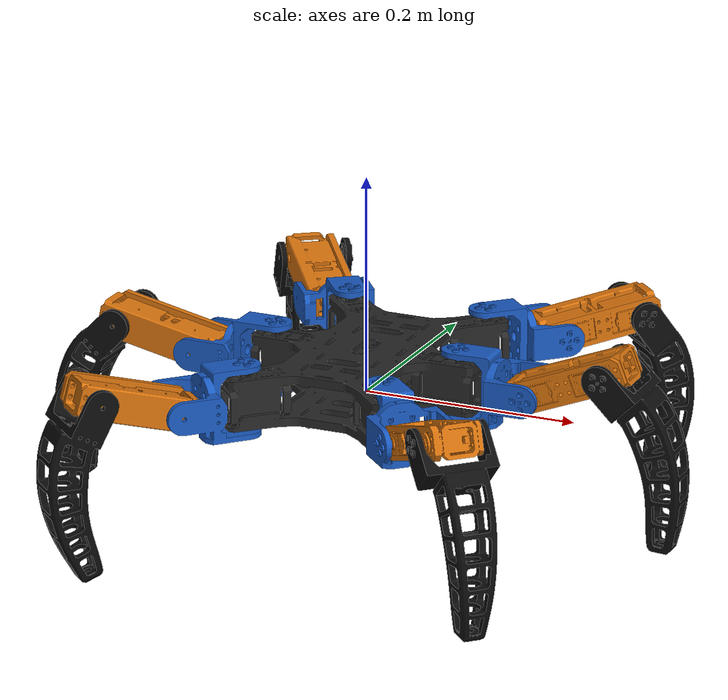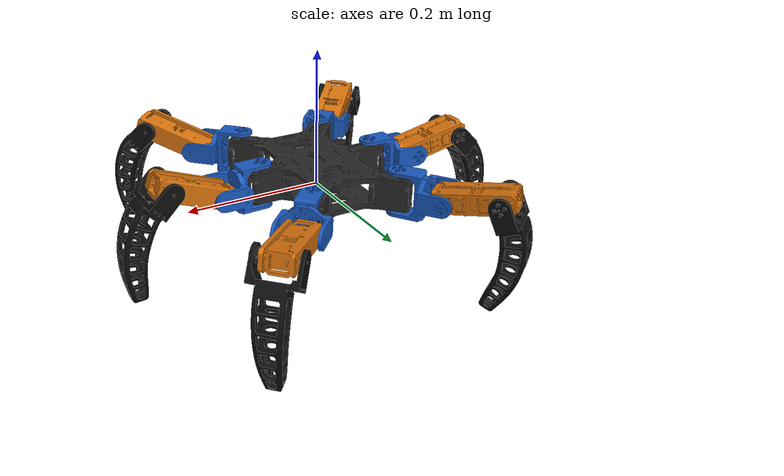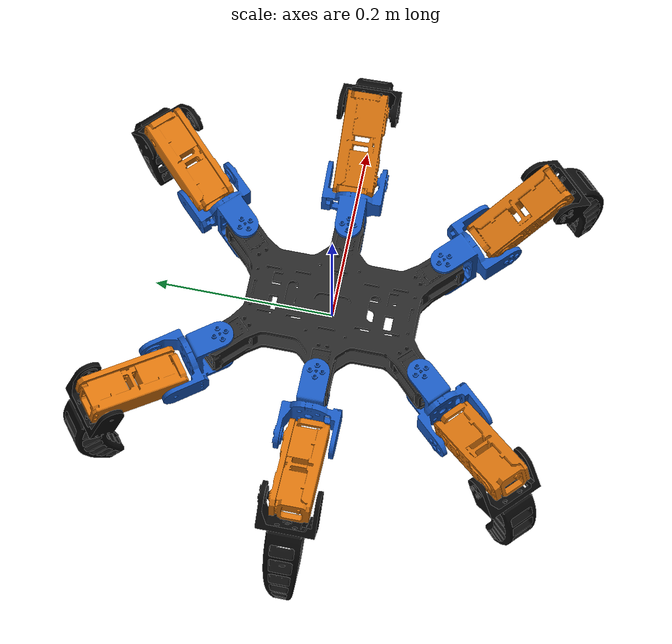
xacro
<?xml version="1.0"?>
<robot xmlns:xacro="http://www.ros.org/wiki/xacro" name="hexapod">

    <xacro:arg name="package_name" default="hexa_description"/>
    <xacro:arg name="robot_name" default="hexapod"/>
    <xacro:arg name="prefix" default=""/>
    <xacro:arg name="config_dir" default="hexa_description"/>

    <xacro:property name="package_name" value="$(arg package_name)"/>
    <xacro:property name="robot_name" value="$(arg robot_name)"/>
    <xacro:property name="prefix" value="$(arg prefix)"/>
    <xacro:property name="config_dir" value="$(arg config_dir)"/>

    <xacro:include filename="materials.xacro"/>

    <material name="base_color">
        <color rgba="0.15 0.15 0.15 1.0"/>
    </material>
    <material name="coxa_color">
        <color rgba="0.10 0.35 0.75 1.0"/>
    </material>
    <material name="femur_color">
        <color rgba="0.85 0.45 0.05 1.0"/>
    </material>
    <material name="tibia_color">
        <color rgba="0.05 0.05 0.05 1.0"/>
    </material>

    <!-- TRANSMISSION MACRO FOR HEXAPOD LEGS        -->
    <xacro:macro name="leg_transmission" params="leg_num prefix">
        <!-- Coxa Joint (Base to Coxa) -->
        <transmission name="${prefix}Joint${leg_num}_1_tran">
            <type>transmission_interface/SimpleTransmission</type>
            <joint name="${prefix}Joint${leg_num}_1">
                <hardwareInterface>hardware_interface/EffortJointInterface</hardwareInterface>
            </joint>
            <actuator name="${prefix}Joint${leg_num}_1_motor">
                <hardwareInterface>hardware_interface/EffortJointInterface</hardwareInterface>
                <mechanicalReduction>1</mechanicalReduction>
            </actuator>
        </transmission>

        <!-- Femur Joint (Coxa to Femur) -->
        <transmission name="${prefix}Joint${leg_num}_2_tran">
            <type>transmission_interface/SimpleTransmission</type>
            <joint name="${prefix}Joint${leg_num}_2">
                <hardwareInterface>hardware_interface/EffortJointInterface</hardwareInterface>
            </joint>
            <actuator name="${prefix}Joint${leg_num}_2_motor">
                <hardwareInterface>hardware_interface/EffortJointInterface</hardwareInterface>
                <mechanicalReduction>1</mechanicalReduction>
            </actuator>
        </transmission>

        <!-- Tibia Joint (Femur to Tibia) -->
        <transmission name="${prefix}Joint${leg_num}_3_tran">
            <type>transmission_interface/SimpleTransmission</type>
            <joint name="${prefix}Joint${leg_num}_3">
                <hardwareInterface>hardware_interface/EffortJointInterface</hardwareInterface>
            </joint>
            <actuator name="${prefix}Joint${leg_num}_3_motor">
                <hardwareInterface>hardware_interface/EffortJointInterface</hardwareInterface>
                <mechanicalReduction>1</mechanicalReduction>
            </actuator>
        </transmission>
    </xacro:macro>

    <!-- Minimal frames -->
    <link name="${prefix}base_footprint">
    </link>

    <link name="${prefix}base_link">
    </link>

    <joint name="${prefix}base_footprint_to_base_link" type="fixed">
        <parent link="${prefix}base_footprint"/>
        <child link="${prefix}base_link"/>
        <origin xyz="0 0 0" rpy="0 0 0"/>
    </joint>

    <!-- Base link and mesh -->
    <link name="${prefix}Base">
        <inertial>
            <origin xyz="3.17137522879131E-06 -3.31180346009379E-06 0.0185997063575468" rpy="0 0 0"/>
            <mass value="0.516033712055295"/>
            <inertia ixx="0.00150227819625822" ixy="5.41358455149925E-09" ixz="-1.21815711093665E-09" iyy="0.000814451751266275" iyz="-4.64061267975536E-19" izz="0.00226054167247862"/>
        </inertial>

        <visual>
            <origin xyz="0 0 0" rpy="0 0 0"/>
            <geometry>
                <mesh filename="package://${package_name}/meshes/Base.STL"/>
            </geometry>
            <material name="base_color"/>
        </visual>

        <collision>
            <origin xyz="0 0 0" rpy="0 0 0"/>
            <geometry>
                <mesh filename="package://${package_name}/meshes/Base.STL"/>
            </geometry>
        </collision>
    </link>

    <gazebo reference="${prefix}Base">
        <sensor name="imu_sensor" type="imu">
            <always_on>1</always_on>
            <update_rate>50</update_rate>
            <visualize>false</visualize>
            <topic>imu</topic>
        </sensor>
    </gazebo>

    <joint name="${prefix}base_link_to_Base" type="fixed">
        <parent link="${prefix}base_link"/>
        <child link="${prefix}Base"/>
        <origin xyz="0 0 0" rpy="0 0 0"/>
    </joint>

    <!-- Template for leg: Coxa/Femur/Tibia groups repeated 6x. Limits set to conservative defaults. -->

    <!-- Coxa 1 -->
    <link name="${prefix}Coxa_1">
        <inertial>
            <origin xyz="0.000577862012579221 -0.0317727763355633 0.0354243258351977" rpy="0 0 0"/>
            <mass value="0.058206986384816"/>
            <inertia ixx="2.09518881532946E-05" ixy="-5.83217116289199E-12" ixz="2.58985476936146E-06" iyy="1.97804446474374E-05" iyz="2.51053441650112E-06" izz="2.06393092896648E-05"/>
        </inertial>
        <visual>
            <geometry>
                <mesh filename="package://${package_name}/meshes/Coxa_1.STL"/>
            </geometry>
            <material name="coxa_color"/>
        </visual>
        <collision>
            <geometry>
                <mesh filename="package://${package_name}/meshes/Coxa_1.STL"/>
            </geometry>
        </collision>
    </link>

    <joint name="${prefix}Joint1_1" type="revolute">
        <parent link="${prefix}Base"/>
        <child link="${prefix}Coxa_1"/>
        <origin xyz="0.067149 0.11215 0.05285" rpy="1.5708 0 2.3578"/>
        <axis xyz="0 -1 0"/>
        <limit lower="-1.5708" upper="1.5708" effort="5" velocity="2"/>
    </joint>

    <link name="${prefix}Femur_1">
        <inertial>
            <origin xyz="0.00548415363509747 -0.0355181600169509 0.0386098257844835" rpy="0 0 0"/>
            <mass value="0.10712888900759"/>
            <inertia ixx="5.18535588310174E-05" ixy="-1.40002219798617E-10" ixz="-5.13657075411247E-06" iyy="4.90722656444643E-05" iyz="2.0073057216516E-11" izz="1.67583851946084E-05"/>
        </inertial>
        <visual>
            <geometry>
                <mesh filename="package://${package_name}/meshes/Femur_1.STL"/>
            </geometry>
            <material name="femur_color"/>
        </visual>
        <collision>
            <geometry>
                <mesh filename="package://${package_name}/meshes/Femur_1.STL"/>
            </geometry>
        </collision>
    </link>

    <joint name="${prefix}Joint1_2" type="revolute">
        <parent link="${prefix}Coxa_1"/>
        <child link="${prefix}Femur_1"/>
        <origin xyz="-0.03075 -0.03075 0.07" rpy="0 0 1.5708"/>
        <axis xyz="0 -1 0"/>
        <limit lower="-1.5708" upper="1.5708" effort="5" velocity="2"/>
    </joint>

    <link name="${prefix}Tibia_1">
        <inertial>
            <origin xyz="-0.0138680196135901 -0.0324549603873032 0.0624085311603042" rpy="0 0 0"/>
            <mass value="0.0754192114511324"/>
            <inertia ixx="8.21130142628132E-05" ixy="1.60749444883877E-08" ixz="3.75894773005154E-05" iyy="0.000101713737698438" iyz="2.38816460912834E-06" izz="4.78951327218008E-05"/>
        </inertial>
        <visual>
            <geometry>
                <mesh filename="package://${package_name}/meshes/Tibia_1.STL"/>
            </geometry>
            <material name="tibia_color"/>
        </visual>
        <collision>
            <origin xyz="-0.0716 -0.0404 0.1549" rpy="0 0 0"/>
            <geometry>
                <sphere radius="0.012"/>
            </geometry>
        </collision>
    </link>

    <joint name="${prefix}Joint1_3" type="revolute">
        <parent link="${prefix}Femur_1"/>
        <child link="${prefix}Tibia_1"/>
        <origin xyz="0.011069 -0.00075 0.077211" rpy="0 -0.95571 0"/>
        <axis xyz="0 -1 0"/>
        <limit lower="-2.0" upper="0.5" effort="5" velocity="2"/>
    </joint>

    <!-- Coxa 2 -->
    <link name="${prefix}Coxa_2">
        <inertial>
            <origin xyz="0.000577862012579344 -0.0317727763355634 0.0354243258351973" rpy="0 0 0"/>
            <mass value="0.058206986384815"/>
            <inertia ixx="2.09518881532943E-05" ixy="-5.83217106619788E-12" ixz="2.58985476936139E-06" iyy="1.97804446474369E-05" iyz="2.51053441650115E-06" izz="2.06393092896644E-05"/>
        </inertial>
        <visual>
            <geometry>
                <mesh filename="package://${package_name}/meshes/Coxa_2.STL"/>
            </geometry>
            <material name="coxa_color"/>
        </visual>
        <collision>
            <geometry>
                <mesh filename="package://${package_name}/meshes/Coxa_2.STL"/>
            </geometry>
        </collision>
    </link>

    <joint name="${prefix}Joint2_1" type="revolute">
        <parent link="${prefix}Base"/>
        <child link="${prefix}Coxa_2"/>
        <origin xyz="0.08925 0 0.05285" rpy="1.5708 0 1.6011"/>
        <axis xyz="0 -1 0"/>
        <limit lower="-1.5708" upper="1.5708" effort="5" velocity="2"/>
    </joint>

    <link name="${prefix}Femur_2">
        <inertial>
            <origin xyz="0.0142167130076838 -0.0347681597363993 0.0363193553535422" rpy="0 0 0"/>
            <mass value="0.107128867042949"/>
            <inertia ixx="4.77633033042784E-05" ixy="1.31761819081924E-10" ixz="-1.23774873097642E-05" iyy="4.90722655777639E-05" iyz="-5.13556803500408E-11" izz="2.08486251280525E-05"/>
        </inertial>
        <visual>
            <geometry>
                <mesh filename="package://${package_name}/meshes/Femur_2.STL"/>
            </geometry>
            <material name="femur_color"/>
        </visual>
        <collision>
            <geometry>
                <mesh filename="package://${package_name}/meshes/Femur_2.STL"/>
            </geometry>
        </collision>
    </link>

    <joint name="${prefix}Joint2_2" type="revolute">
        <parent link="${prefix}Coxa_2"/>
        <child link="${prefix}Femur_2"/>
        <origin xyz="-0.03075 -0.03075 0.07" rpy="0 0 1.5708"/>
        <axis xyz="0 -1 0"/>
        <limit lower="-1.5708" upper="1.5708" effort="5" velocity="2"/>
    </joint>

    <link name="${prefix}Tibia_2">
        <inertial>
            <origin xyz="-0.0138677597249909 -0.0324550056850968 0.0624082245511181" rpy="0 0 0"/>
            <mass value="0.075419455199217"/>
            <inertia ixx="8.21142033520056E-05" ixy="1.59973639579329E-08" ixz="3.75906485740428E-05" iyy="0.000101716150136195" iyz="2.38824872556098E-06" izz="4.78961698795125E-05"/>
        </inertial>
        <visual>
            <geometry>
                <mesh filename="package://${package_name}/meshes/Tibia_2.STL"/>
            </geometry>
            <material name="tibia_color"/>
        </visual>
        <collision>
            <origin xyz="-0.0716 -0.0404 0.1549" rpy="0 0 0"/>
            <geometry>
                <sphere radius="0.012"/>
            </geometry>
        </collision>
    </link>

    <joint name="${prefix}Joint2_3" type="revolute">
        <parent link="${prefix}Femur_2"/>
        <child link="${prefix}Tibia_2"/>
        <origin xyz="0.028338 0.00075 0.07267" rpy="0 -0.79606 0"/>
        <axis xyz="0 -1 0"/>
        <limit lower="-2.0" upper="0.5" effort="5" velocity="2"/>
    </joint>

    <!-- Coxa 3 -->
    <link name="${prefix}Coxa_3">
        <inertial>
            <origin xyz="0.000577862012579193 -0.0317727763355633 0.0354243258351977" rpy="0 0 0"/>
            <mass value="0.058206986384816"/>
            <inertia ixx="2.09518881532946E-05" ixy="-5.83217116373902E-12" ixz="2.58985476936145E-06" iyy="1.97804446474374E-05" iyz="2.51053441650111E-06" izz="2.06393092896648E-05"/>
        </inertial>
        <visual>
            <geometry>
                <mesh filename="package://${package_name}/meshes/Coxa_3.STL"/>
            </geometry>
            <material name="coxa_color"/>
        </visual>
        <collision>
            <geometry>
                <mesh filename="package://${package_name}/meshes/Coxa_3.STL"/>
            </geometry>
        </collision>
    </link>

    <joint name="${prefix}Joint3_1" type="revolute">
        <parent link="${prefix}Base"/>
        <child link="${prefix}Coxa_3"/>
        <origin xyz="0.067149 -0.11215 0.05585" rpy="1.5708 0 0.80016"/>
        <axis xyz="0 -1 0"/>
        <limit lower="-1.5708" upper="1.5708" effort="5" velocity="2"/>
    </joint>

    <link name="${prefix}Femur_3">
        <inertial>
            <origin xyz="0.0124923057730173 -0.0347681599456048 0.0369479735594456" rpy="0 0 0"/>
            <mass value="0.1071288893298"/>
            <inertia ixx="4.88670640388268E-05" ixy="1.34047909963352E-10" ixz="-1.10578824251472E-05" iyy="4.90722656252189E-05" iyz="-4.50447281183348E-11" izz="1.97448801612347E-05"/>
        </inertial>
        <visual>
            <geometry>
                <mesh filename="package://${package_name}/meshes/Femur_3.STL"/>
            </geometry>
            <material name="femur_color"/>
        </visual>
        <collision>
            <geometry>
                <mesh filename="package://${package_name}/meshes/Femur_3.STL"/>
            </geometry>
        </collision>
    </link>

    <joint name="${prefix}Joint3_2" type="revolute">
        <parent link="${prefix}Coxa_3"/>
        <child link="${prefix}Femur_3"/>
        <origin xyz="-0.03075 -0.03075 0.07" rpy="0 0 1.5708"/>
        <axis xyz="0 -1 0"/>
        <limit lower="-1.5708" upper="1.5708" effort="5" velocity="2"/>
    </joint>

    <link name="${prefix}Tibia_3">
        <inertial>
            <origin xyz="-0.0138680607149134 -0.0324549674801066 0.0624085192294458" rpy="0 0 0"/>
            <mass value="0.0754192264755821"/>
            <inertia ixx="8.21130557234919E-05" ixy="1.61072454435789E-08" ixz="3.75894897845248E-05" iyy="0.000101713750762835" iyz="2.38816334021167E-06" izz="4.78950705242381E-05"/>
        </inertial>
        <visual>
            <geometry>
                <mesh filename="package://${package_name}/meshes/Tibia_3.STL"/>
            </geometry>
            <material name="tibia_color"/>
        </visual>
        <collision>
            <origin xyz="-0.0716 -0.0404 0.1549" rpy="0 0 0"/>
            <geometry>
                <sphere radius="0.012"/>
            </geometry>
        </collision>
    </link>

    <joint name="${prefix}Joint3_3" type="revolute">
        <parent link="${prefix}Femur_3"/>
        <child link="${prefix}Tibia_3"/>
        <origin xyz="0.024888 0.00075 0.073923" rpy="0 -0.79606 0"/>
        <axis xyz="0 -1 0"/>
        <limit lower="-2.0" upper="0.5" effort="5" velocity="2"/>
    </joint>

    <!-- Coxa 4 -->
    <link name="${prefix}Coxa_4">
        <inertial>
            <origin xyz="0.000577862012579221 -0.0317727763355633 0.0354243258351977" rpy="0 0 0"/>
            <mass value="0.0582069863848161"/>
            <inertia ixx="2.09518881532946E-05" ixy="-5.83217116691539E-12" ixz="2.58985476936146E-06" iyy="1.97804446474374E-05" iyz="2.51053441650112E-06" izz="2.06393092896649E-05"/>
        </inertial>
        <visual>
            <geometry>
                <mesh filename="package://${package_name}/meshes/Coxa_4.STL"/>
            </geometry>
            <material name="coxa_color"/>
        </visual>
        <collision>
            <geometry>
                <mesh filename="package://${package_name}/meshes/Coxa_4.STL"/>
            </geometry>
        </collision>
    </link>

    <joint name="${prefix}Joint4_1" type="revolute">
        <parent link="${prefix}Base"/>
        <child link="${prefix}Coxa_4"/>
        <origin xyz="-0.067149 -0.11215 0.05285" rpy="1.5708 0 -0.7472"/>
        <axis xyz="0 -1 0"/>
        <limit lower="-1.5708" upper="1.5708" effort="5" velocity="2"/>
    </joint>

    <link name="${prefix}Femur_4">
        <inertial>
            <origin xyz="0.0106250052421249 -0.0347681599253407 0.0375275860554965" rpy="0 0 0"/>
            <mass value="0.107128889458837"/>
            <inertia ixx="4.99008396656431E-05" ixy="1.36136048979621E-10" ixz="-9.5447508653378E-06" iyy="4.90722656382846E-05" iyz="-3.82635614824619E-11" izz="1.87111046061255E-05"/>
        </inertial>
        <visual>
            <geometry>
                <mesh filename="package://${package_name}/meshes/Femur_4.STL"/>
            </geometry>
            <material name="femur_color"/>
        </visual>
        <collision>
            <geometry>
                <mesh filename="package://${package_name}/meshes/Femur_4.STL"/>
            </geometry>
        </collision>
    </link>

    <joint name="${prefix}Joint4_2" type="revolute">
        <parent link="${prefix}Coxa_4"/>
        <child link="${prefix}Femur_4"/>
        <origin xyz="-0.03075 -0.03075 0.07" rpy="0 0 1.5708"/>
        <axis xyz="0 -1 0"/>
        <limit lower="-1.5708" upper="1.5708" effort="5" velocity="2"/>
    </joint>

    <link name="${prefix}Tibia_4">
        <inertial>
            <origin xyz="-0.0138676802679795 -0.0324549919751951 0.0624081139272412" rpy="0 0 0"/>
            <mass value="0.0754193444037423"/>
            <inertia ixx="8.21128644307283E-05" ixy="1.60777020452252E-08" ixz="3.75893890827016E-05" iyy="0.000101713545020214" iyz="2.38815259532932E-06" izz="4.78950777380955E-05"/>
        </inertial>
        <visual>
            <geometry>
                <mesh filename="package://${package_name}/meshes/Tibia_4.STL"/>
            </geometry>
            <material name="tibia_color"/>
        </visual>
        <collision>
            <origin xyz="-0.0716 -0.0404 0.1549" rpy="0 0 0"/>
            <geometry>
                <sphere radius="0.012"/>
            </geometry>
        </collision>
    </link>

    <joint name="${prefix}Joint4_3" type="revolute">
        <parent link="${prefix}Femur_4"/>
        <child link="${prefix}Tibia_4"/>
        <origin xyz="0.021152 0.00075 0.075077" rpy="0 -1.087 0"/>
        <axis xyz="0 -1 0"/>
        <limit lower="-2.0" upper="0.5" effort="5" velocity="2"/>
    </joint>

    <!-- Coxa 5 -->
    <link name="${prefix}Coxa_5">
        <inertial>
            <origin xyz="0.000577862012579334 -0.0317727763355634 0.0354243258351973" rpy="0 0 0"/>
            <mass value="0.0582069863848149"/>
            <inertia ixx="2.09518881532944E-05" ixy="-5.83217106949006E-12" ixz="2.58985476936138E-06" iyy="1.9780444647437E-05" iyz="2.51053441650115E-06" izz="2.06393092896644E-05"/>
        </inertial>
        <visual>
            <geometry>
                <mesh filename="package://${package_name}/meshes/Coxa_5.STL"/>
            </geometry>
            <material name="coxa_color"/>
        </visual>
        <collision>
            <geometry>
                <mesh filename="package://${package_name}/meshes/Coxa_5.STL"/>
            </geometry>
        </collision>
    </link>

    <joint name="${prefix}Joint5_1" type="revolute">
        <parent link="${prefix}Base"/>
        <child link="${prefix}Coxa_5"/>
        <origin xyz="-0.08925 0 0.05285" rpy="1.5708 0 -1.5753"/>
        <axis xyz="0 -1 0"/>
        <limit lower="-1.5708" upper="1.5708" effort="5" velocity="2"/>
    </joint>

    <link name="${prefix}Femur_5">
        <inertial>
            <origin xyz="0.00789662242713735 -0.0347681599630932 0.0381895004101029" rpy="0 0 0"/>
            <mass value="0.107128865114784"/>
            <inertia ixx="5.10717969304319E-05" ixy="-1.38463003283807E-10" ixz="-7.29444963032223E-06" iyy="4.90722655207553E-05" iyz="2.88007958013131E-11" izz="1.7540130015678E-05"/>
        </inertial>
        <visual>
            <geometry>
                <mesh filename="package://${package_name}/meshes/Femur_5.STL"/>
            </geometry>
            <material name="femur_color"/>
        </visual>
        <collision>
            <geometry>
                <mesh filename="package://${package_name}/meshes/Femur_5.STL"/>
            </geometry>
        </collision>
    </link>

    <joint name="${prefix}Joint5_2" type="revolute">
        <parent link="${prefix}Coxa_5"/>
        <child link="${prefix}Femur_5"/>
        <origin xyz="-0.03075 -0.03075 0.07" rpy="0 0 1.5708"/>
        <axis xyz="0 -1 0"/>
        <limit lower="-1.5708" upper="1.5708" effort="5" velocity="2"/>
    </joint>

    <link name="${prefix}Tibia_5">
        <inertial>
            <origin xyz="-0.0138677584148455 -0.0324550061892322 0.0624082248397783" rpy="0 0 0"/>
            <mass value="0.0754194500255794"/>
            <inertia ixx="8.21141952956945E-05" ixy="1.59948220075322E-08" ixz="3.75906472608689E-05" iyy="0.000101716141896386" iyz="2.38825424699117E-06" izz="4.78961714928674E-05"/>
        </inertial>
        <visual>
            <geometry>
                <mesh filename="package://${package_name}/meshes/Tibia_5.STL"/>
            </geometry>
            <material name="tibia_color"/>
        </visual>
        <collision>
            <origin xyz="-0.0716 -0.0404 0.1549" rpy="0 0 0"/>
            <geometry>
                <sphere radius="0.012"/>
            </geometry>
        </collision>
    </link>

    <joint name="${prefix}Joint5_3" type="revolute">
        <parent link="${prefix}Femur_5"/>
        <child link="${prefix}Tibia_5"/>
        <origin xyz="0.015893 0 0.076364" rpy="0 -0.79606 0"/>
        <axis xyz="0 -1 0"/>
        <limit lower="-2.0" upper="0.5" effort="5" velocity="2"/>
    </joint>

    <!-- Coxa 6 -->
    <link name="${prefix}Coxa_6">
        <inertial>
            <origin xyz="0.000577862012579221 -0.0317727763355633 0.0354243258351977" rpy="0 0 0"/>
            <mass value="0.0582069863848159"/>
            <inertia ixx="2.09518881532946E-05" ixy="-5.83217113176353E-12" ixz="2.58985476936145E-06" iyy="1.97804446474373E-05" iyz="2.51053441650112E-06" izz="2.06393092896648E-05"/>
        </inertial>
        <visual>
            <geometry>
                <mesh filename="package://${package_name}/meshes/Coxa_6.STL"/>
            </geometry>
            <material name="coxa_color"/>
        </visual>
        <collision>
            <geometry>
                <mesh filename="package://${package_name}/meshes/Coxa_6.STL"/>
            </geometry>
        </collision>
    </link>

    <joint name="${prefix}Joint6_1" type="revolute">
        <parent link="${prefix}Base"/>
        <child link="${prefix}Coxa_6"/>
        <origin xyz="-0.067149 0.11215 0.05285" rpy="1.5708 0 -2.5044"/>
        <axis xyz="0 -1 0"/>
        <limit lower="-1.5708" upper="1.5708" effort="5" velocity="2"/>
    </joint>

    <link name="${prefix}Femur_6">
        <inertial>
            <origin xyz="0.00675394593304171 -0.0355181598715529 0.0384080569020034" rpy="0 0 0"/>
            <mass value="0.107128889683649"/>
            <inertia ixx="5.14769513685849E-05" ixy="-1.39253820187571E-10" ixz="-6.28169057953268E-06" iyy="4.90722656194813E-05" iyz="2.45845148700639E-11" izz="1.71349930220452E-05"/>
        </inertial>
        <visual>
            <geometry>
                <mesh filename="package://${package_name}/meshes/Femur_6.STL"/>
            </geometry>
            <material name="femur_color"/>
        </visual>
        <collision>
            <geometry>
                <mesh filename="package://${package_name}/meshes/Femur_6.STL"/>
            </geometry>
        </collision>
    </link>

    <joint name="${prefix}Joint6_2" type="revolute">
        <parent link="${prefix}Coxa_6"/>
        <child link="${prefix}Femur_6"/>
        <origin xyz="-0.03075 -0.03075 0.07" rpy="0 0 1.5708"/>
        <axis xyz="0 -1 0"/>
        <limit lower="-1.5708" upper="1.5708" effort="5" velocity="2"/>
    </joint>

    <link name="${prefix}Tibia_6">
        <inertial>
            <origin xyz="-0.0138676550200287 -0.0324549934835745 0.0624080741697963" rpy="0 0 0"/>
            <mass value="0.0754192670395059"/>
            <inertia ixx="8.21140496751916E-05" ixy="1.59843101322849E-08" ixz="3.75903641239812E-05" iyy="0.000101715600934306" iyz="2.38830021421716E-06" izz="4.78958781380929E-05"/>
        </inertial>
        <visual>
            <geometry>
                <mesh filename="package://${package_name}/meshes/Tibia_6.STL"/>
            </geometry>
            <material name="tibia_color"/>
        </visual>
        <collision>
            <origin xyz="-0.0716 -0.0404 0.1549" rpy="0 0 0"/>
            <geometry>
                <sphere radius="0.012"/>
            </geometry>
        </collision>
    </link>

    <joint name="${prefix}Joint6_3" type="revolute">
        <parent link="${prefix}Femur_6"/>
        <child link="${prefix}Tibia_6"/>
        <origin xyz="0.013608 -0.00075 0.076804" rpy="0 -1.159 0"/>
        <axis xyz="0 -1 0"/>
        <limit lower="-2.0" upper="0.5" effort="5" velocity="2"/>
    </joint>

    <!-- INVOKING TRANSMISSION MACROS FOR 6 LEGS    -->
    <xacro:leg_transmission leg_num="1" prefix="${prefix}"/>
    <xacro:leg_transmission leg_num="2" prefix="${prefix}"/>
    <xacro:leg_transmission leg_num="3" prefix="${prefix}"/>
    <xacro:leg_transmission leg_num="4" prefix="${prefix}"/>
    <xacro:leg_transmission leg_num="5" prefix="${prefix}"/>
    <xacro:leg_transmission leg_num="6" prefix="${prefix}"/>

    <gazebo>
        <plugin filename="ignition-gazebo-odometry-publisher-system" name="ignition::gazebo::systems::OdometryPublisher">
        <odom_topic>odom</odom_topic>
        <odom_frame>odom</odom_frame>
        <tf_topic>tf</tf_topic>
        <robot_base_frame>base_footprint</robot_base_frame>
        </plugin>
    </gazebo>
    <gazebo>
        <plugin
            filename="libignition-gazebo-imu-system.so"
            name="ignition::gazebo::systems::Imu">
        </plugin>
            <plugin
            filename="libignition-gazebo-contact-system.so"
            name="ignition::gazebo::systems::Contact">
        </plugin>
    </gazebo>
    <!-- ROS 2 CONTROL HARDWARE INTERFACE           -->
    <ros2_control name="IgnitionSystem" type="system">
        <hardware>
            <plugin>ign_ros2_control/IgnitionSystem</plugin>
        </hardware>

        <!-- Macro to define the interfaces for a single leg -->
        <xacro:macro name="ros2_control_leg" params="leg_num prefix">
            <!-- Coxa -->
            <joint name="${prefix}Joint${leg_num}_1">
                <command_interface name="position"/>
                <state_interface name="position"/>
                <state_interface name="velocity"/>
                <state_interface name="effort"/>
            </joint>
            <!-- Femur -->
            <joint name="${prefix}Joint${leg_num}_2">
                <command_interface name="position"/>
                <state_interface name="position"/>
                <state_interface name="velocity"/>
                <state_interface name="effort"/>
            </joint>
            <!-- Tibia -->
            <joint name="${prefix}Joint${leg_num}_3">
                <command_interface name="position"/>
                <state_interface name="position"/>
                <state_interface name="velocity"/>
                <state_interface name="effort"/>
            </joint>
        </xacro:macro>

        <!-- Invoking the macro for all 6 legs -->
        <xacro:ros2_control_leg leg_num="1" prefix="${prefix}"/>
        <xacro:ros2_control_leg leg_num="2" prefix="${prefix}"/>
        <xacro:ros2_control_leg leg_num="3" prefix="${prefix}"/>
        <xacro:ros2_control_leg leg_num="4" prefix="${prefix}"/>
        <xacro:ros2_control_leg leg_num="5" prefix="${prefix}"/>
        <xacro:ros2_control_leg leg_num="6" prefix="${prefix}"/>
    </ros2_control>

    <!-- GAZEBO IGNITION ROS 2 CONTROL PLUGIN       -->
    <gazebo>
        <plugin filename="ign_ros2_control-system" name="ign_ros2_control::IgnitionROS2ControlPlugin">
            <parameters>${config_dir}/config/controller.yaml</parameters>
        </plugin>
    </gazebo>

    <!-- ================= FOOT CONTACT SENSORS ================= -->

    <gazebo reference="${prefix}Tibia_1">
        <sensor name="contact_sensor_1" type="contact">
            <always_on>true</always_on>
            <update_rate>20</update_rate>
            <contact>
                <collision>${prefix}Tibia_1_collision</collision>
            </contact>
        </sensor>
    </gazebo>

    <gazebo reference="${prefix}Tibia_2">
        <sensor name="contact_sensor_2" type="contact">
            <always_on>true</always_on>
            <update_rate>20</update_rate>
            <contact>
                <collision>${prefix}Tibia_2_collision</collision>
            </contact>
        </sensor>
    </gazebo>

    <gazebo reference="${prefix}Tibia_3">
        <sensor name="contact_sensor_3" type="contact">
            <always_on>true</always_on>
            <update_rate>20</update_rate>
            <contact>
                <collision>${prefix}Tibia_3_collision</collision>
            </contact>
        </sensor>
    </gazebo>

    <gazebo reference="${prefix}Tibia_4">
        <sensor name="contact_sensor_4" type="contact">
            <always_on>true</always_on>
            <update_rate>20</update_rate>
            <contact>
                <collision>${prefix}Tibia_4_collision</collision>
            </contact>
        </sensor>
    </gazebo>

    <gazebo reference="${prefix}Tibia_5">
        <sensor name="contact_sensor_5" type="contact">
            <always_on>true</always_on>
            <update_rate>20</update_rate>
            <contact>
                <collision>${prefix}Tibia_5_collision</collision>
            </contact>
        </sensor>
    </gazebo>

    <gazebo reference="${prefix}Tibia_6">
        <sensor name="contact_sensor_6" type="contact">
            <always_on>true</always_on>
            <update_rate>20</update_rate>
            <contact>
                <collision>${prefix}Tibia_6_collision</collision>
            </contact>
        </sensor>
    </gazebo>
</robot>
